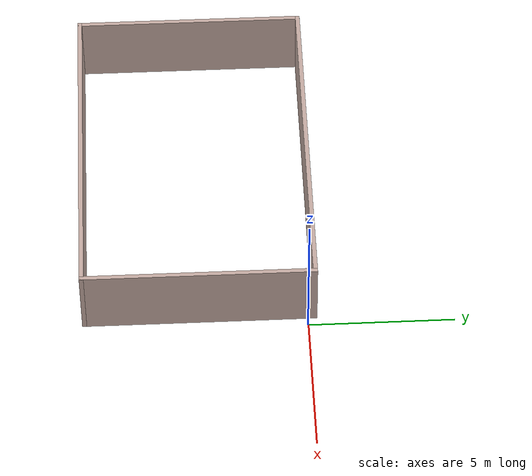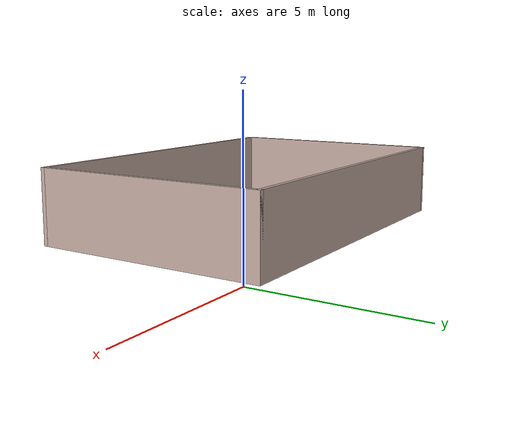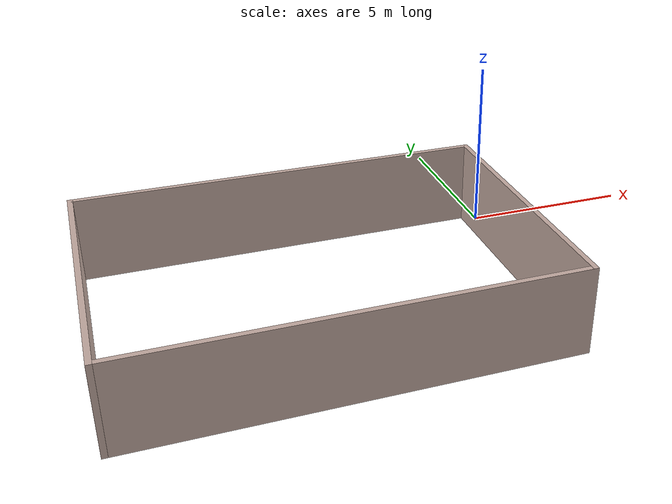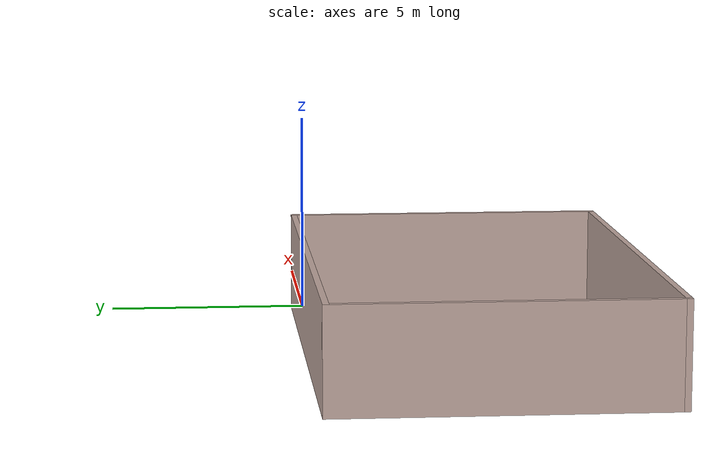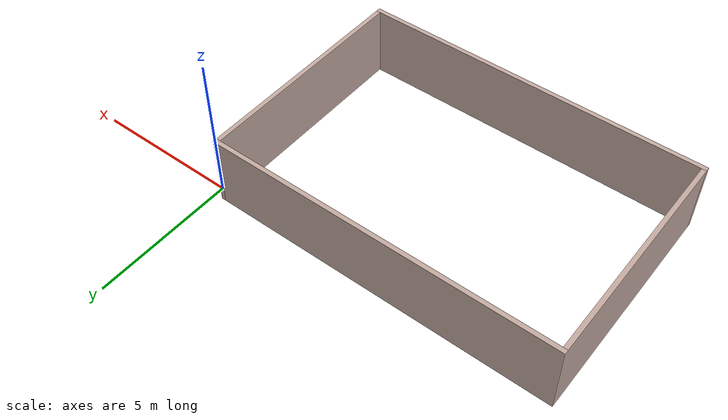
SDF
<?xml version='1.0'?>
<sdf version='1.6'>
  <model name='wall'>
    <pose frame=''>-6.27681 -3.68867 0 0 -0 0</pose>
    <link name='Wall_12'>
      <collision name='Wall_12_Collision'>
        <geometry>
          <box>
            <size>8 0.15 2.5</size>
          </box>
        </geometry>
        <pose frame=''>0 0 1.25 0 -0 0</pose>
      </collision>
      <visual name='Wall_12_Visual'>
        <pose frame=''>0 0 1.25 0 -0 0</pose>
        <geometry>
          <box>
            <size>8 0.15 2.5</size>
          </box>
        </geometry>
        <material>
          <script>
            <uri>file://media/materials/scripts/gazebo.material</uri>
            <name>Gazebo/Grey</name>
          </script>
          <ambient>0.760784 0.662745 0.627451 1</ambient>
        </material>
        <meta>
          <layer>0</layer>
        </meta>
      </visual>
      <pose frame=''>-5.925 0 0 0 -0 1.5708</pose>
    </link>
    <link name='Wall_13'>
      <collision name='Wall_13_Collision'>
        <geometry>
          <box>
            <size>12 0.15 2.5</size>
          </box>
        </geometry>
        <pose frame=''>0 0 1.25 0 -0 0</pose>
      </collision>
      <visual name='Wall_13_Visual'>
        <pose frame=''>0 0 1.25 0 -0 0</pose>
        <geometry>
          <box>
            <size>12 0.15 2.5</size>
          </box>
        </geometry>
        <material>
          <script>
            <uri>file://media/materials/scripts/gazebo.material</uri>
            <name>Gazebo/Grey</name>
          </script>
          <ambient>0.760784 0.662745 0.627451 1</ambient>
        </material>
        <meta>
          <layer>0</layer>
        </meta>
      </visual>
      <pose frame=''>0 3.925 0 0 -0 0</pose>
    </link>
    <link name='Wall_14'>
      <collision name='Wall_14_Collision'>
        <geometry>
          <box>
            <size>8 0.15 2.5</size>
          </box>
        </geometry>
        <pose frame=''>0 0 1.25 0 -0 0</pose>
      </collision>
      <visual name='Wall_14_Visual'>
        <pose frame=''>0 0 1.25 0 -0 0</pose>
        <geometry>
          <box>
            <size>8 0.15 2.5</size>
          </box>
        </geometry>
        <material>
          <script>
            <uri>file://media/materials/scripts/gazebo.material</uri>
            <name>Gazebo/Grey</name>
          </script>
          <ambient>0.760784 0.662745 0.627451 1</ambient>
        </material>
        <meta>
          <layer>0</layer>
        </meta>
      </visual>
      <pose frame=''>5.925 0 0 0 -0 -1.5708</pose>
    </link>
    <link name='Wall_15'>
      <collision name='Wall_15_Collision'>
        <geometry>
          <box>
            <size>12 0.15 2.5</size>
          </box>
        </geometry>
        <pose frame=''>0 0 1.25 0 -0 0</pose>
      </collision>
      <visual name='Wall_15_Visual'>
        <pose frame=''>0 0 1.25 0 -0 0</pose>
        <geometry>
          <box>
            <size>12 0.15 2.5</size>
          </box>
        </geometry>
        <material>
          <script>
            <uri>file://media/materials/scripts/gazebo.material</uri>
            <name>Gazebo/Grey</name>
          </script>
          <ambient>0.760784 0.662745 0.627451 1</ambient>
        </material>
        <meta>
          <layer>0</layer>
        </meta>
      </visual>
      <pose frame=''>0 -3.925 0 0 -0 3.14159</pose>
    </link>
    <static>1</static>
  </model>
</sdf>
